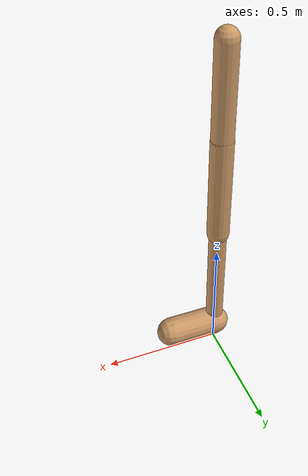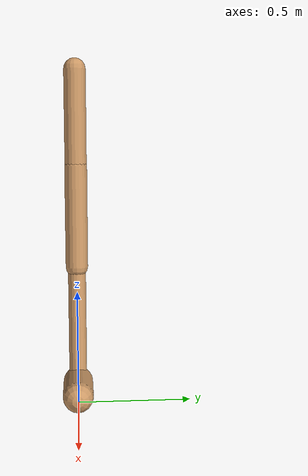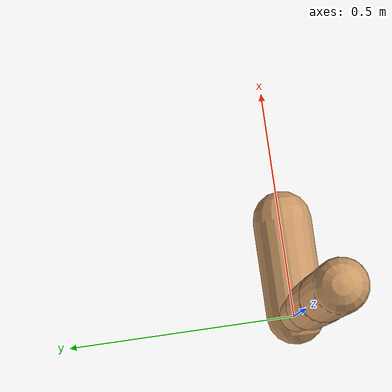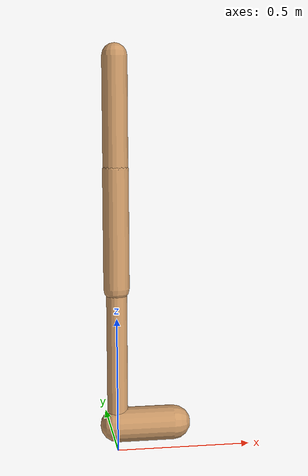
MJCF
<mujoco model="walker2d">
  <compiler angle="degree" coordinate="global" inertiafromgeom="true" />
  <default>
    <joint armature="0.01" damping=".1" limited="true" />
    <geom conaffinity="0" condim="3" contype="1" density="1000" friction="0.8 .1 .1" rgba="0.8 0.6 .4 1" />
  </default>
  <option integrator="RK4" timestep="0.002" />
  <worldbody>

    <body name="torso" pos="0 0 -0.029283286416797116">
      <joint armature="0" axis="1 0 0" damping="0" limited="false" name="ignorex" pos="0 0 0" stiffness="0" type="slide" />
      <joint armature="0" axis="0 0 1" damping="0" limited="false" name="ignorez" pos="0 0 0" ref="1.25" stiffness="0" type="slide" />
      <joint armature="0" axis="0 1 0" damping="0" limited="false" name="ignorey" pos="0 0 0" stiffness="0" type="hinge" />
      <geom fromto="0 0 1.45 0 0 1.05" name="torso_geom" size="0.04598644181458041" type="capsule" />
      <body name="thigh">
        <joint axis="0 -1 0" name="thigh_joint" pos="0 0 1.05" range="-150 0" type="hinge" />
        <geom fromto="0.0 0.0 1.05 0.0 0.0 0.6138710304079565" name="thigh_geom" size="0.047429972271663005" type="capsule" />
        <body name="leg" pos="0.0 0.0 0.013871030407956564">
          <joint axis="0 -1 0" name="leg_joint" pos="0 0 0.6" range="-150 0" type="hinge" />
          <geom fromto="0.0 0.0 0.6 0.0 0.0 0.11541225600884059" name="leg_geom" size="0.0379439778173304" type="capsule" />
          <body name="foot" pos="0.0 0.0 0.01541225600884058">
            <joint axis="0 -1 0" name="foot_joint" pos="0 0 0.1" range="-45 45" type="hinge" />
            <geom fromto="-0.0 0.0 0.1 0.20797797542201046 0.0 0.1" name="foot_geom" size="0.06390103839258796" type="capsule" />
          </body>
        </body>
      </body>

      <body name="thigh_left">
        <joint axis="0 -1 0" name="thigh_left_joint" pos="0 0 1.05" range="-150 0" type="hinge" />
        <geom fromto="0.0 0.0 1.05 0.0 0.0 0.6138710304079565" name="thigh_left_geom" rgba=".7 .3 .6 1" size="0.047429972271663005" type="capsule" />
        <body name="leg_left" pos="0.0 0.0 0.013871030407956564">
          <joint axis="0 -1 0" name="leg_left_joint" pos="0 0 0.6" range="-150 0" type="hinge" />
          <geom fromto="0.0 0.0 0.6 0.0 0.0 0.11541225600884059" name="leg_left_geom" rgba=".7 .3 .6 1" size="0.0379439778173304" type="capsule" />
          <body name="foot_left" pos="0.0 0.0 0.01541225600884058">
            <joint axis="0 -1 0" name="foot_left_joint" pos="0 0 0.1" range="-45 45" type="hinge" />
            <geom fromto="-0.0 0.0 0.1 0.20797797542201046 0.0 0.1" name="foot_left_geom" rgba=".7 .3 .6 1" size="0.06390103839258796" type="capsule" />
          </body>
        </body>
      </body>
    </body>
  </worldbody>
  <actuator>

    <motor ctrllimited="true" ctrlrange="-1.0 1.0" gear="100" joint="thigh_joint" />
    <motor ctrllimited="true" ctrlrange="-1.0 1.0" gear="100" joint="leg_joint" />
    <motor ctrllimited="true" ctrlrange="-1.0 1.0" gear="100" joint="foot_joint" />
    <motor ctrllimited="true" ctrlrange="-1.0 1.0" gear="100" joint="thigh_left_joint" />
    <motor ctrllimited="true" ctrlrange="-1.0 1.0" gear="100" joint="leg_left_joint" />
    <motor ctrllimited="true" ctrlrange="-1.0 1.0" gear="100" joint="foot_left_joint" />

  </actuator>
</mujoco>
